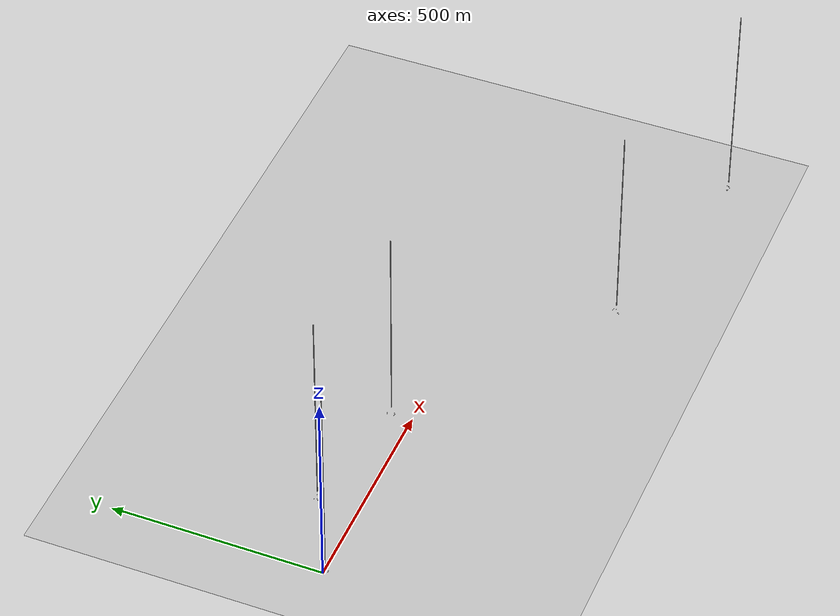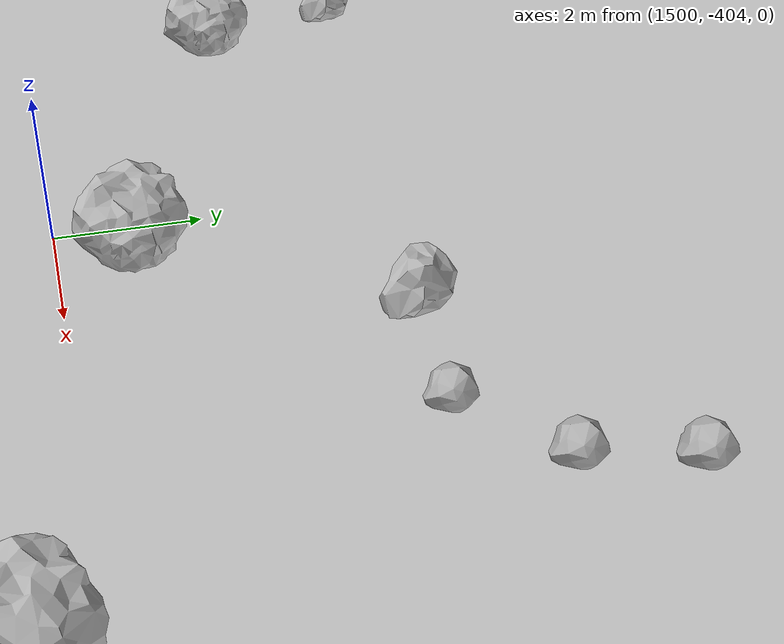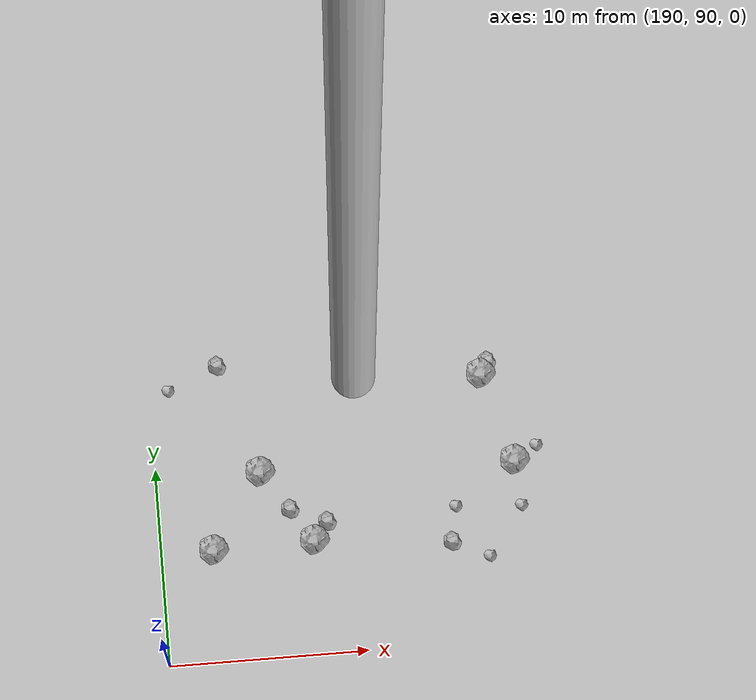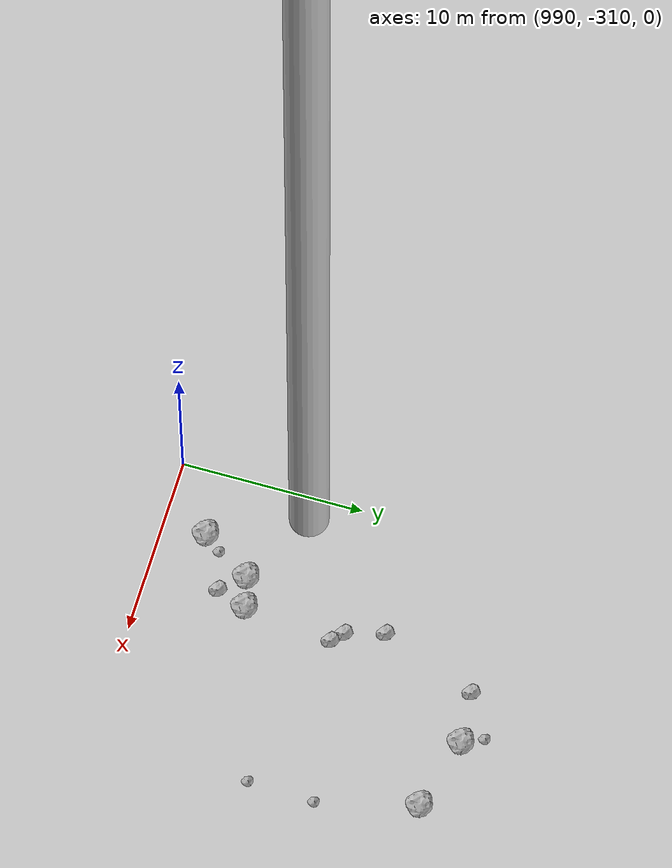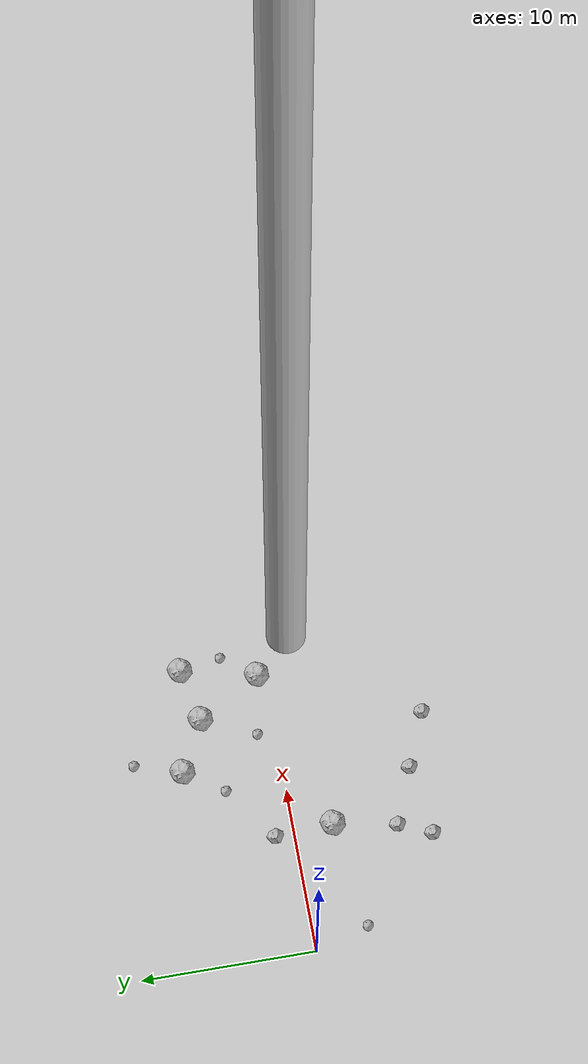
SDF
<?xml version="1.0" ?>
<sdf version="1.6">
  <world name="default">

    <include>
      <uri>model://custom_ground</uri>
    </include>

    <include>
      <uri>model://sun</uri>
    </include>

    <spherical_coordinates>
      <surface_model>EARTH_WGS84</surface_model>
      <latitude_deg>38.161479</latitude_deg>
      <longitude_deg>-122.454630</longitude_deg>
      <elevation>488.0</elevation>
      <heading_deg>90</heading_deg>
    </spherical_coordinates>

    <model name="rock1_0_0">
      <include>
        <uri>model://rock1</uri>
        <pose>7.379232611972613 -2.2428497083635346 0.5 0 0 0</pose>
      </include>
    </model>
    <model name="rock1_0_1">
      <include>
        <uri>model://rock1</uri>
        <pose>17.54307201639631 0.4976345284753698 0.5 0 0 0</pose>
      </include>
    </model>
    <model name="rock1_0_2">
      <include>
        <uri>model://rock1</uri>
        <pose>18.58029220139673 4.981866326986168 0.5 0 0 0</pose>
      </include>
    </model>
    <model name="rock1_0_3">
      <include>
        <uri>model://rock1</uri>
        <pose>12.057764839665095 5.822524278129027 0.5 0 0 0</pose>
      </include>
    </model>
    <model name="rock1_0_4">
      <include>
        <uri>model://rock1</uri>
        <pose>15.242414641748683 4.259333315711826 0.5 0 0 0</pose>
      </include>
    </model>
    <model name="rock2_0_0">
      <include>
        <uri>model://rock2</uri>
        <pose>10.136964048074367 -7.3278439903098125 0.3 0 0 0</pose>
      </include>
    </model>
    <model name="rock2_0_1">
      <include>
        <uri>model://rock2</uri>
        <pose>7.19236365198382 1.147433065514921 0.3 0 0 0</pose>
      </include>
    </model>
    <model name="rock2_0_2">
      <include>
        <uri>model://rock2</uri>
        <pose>13.509653513262517 -8.75320403917659 0.3 0 0 0</pose>
      </include>
    </model>
    <model name="rock2_0_3">
      <include>
        <uri>model://rock2</uri>
        <pose>6.7086103153643 -5.939850212668056 0.3 0 0 0</pose>
      </include>
    </model>
    <model name="rock2_0_4">
      <include>
        <uri>model://rock2</uri>
        <pose>5.854697032377311 -7.84523264386368 0.3 0 0 0</pose>
      </include>
    </model>
    <model name="rock3_0_0">
      <include>
        <uri>model://rock3</uri>
        <pose>12.96662860747352 8.55162350194285 0.2 0 0 0</pose>
      </include>
    </model>
    <model name="rock3_0_1">
      <include>
        <uri>model://rock3</uri>
        <pose>10.47706464797959 3.4771695604316015 0.2 0 0 0</pose>
      </include>
    </model>
    <model name="rock3_0_2">
      <include>
        <uri>model://rock3</uri>
        <pose>19.07142275303622 2.45354061951023 0.2 0 0 0</pose>
      </include>
    </model>
    <model name="rock3_0_3">
      <include>
        <uri>model://rock3</uri>
        <pose>0.9592064327473193 -3.126157604170759 0.2 0 0 0</pose>
      </include>
    </model>
    <model name="rock3_0_4">
      <include>
        <uri>model://rock3</uri>
        <pose>13.742263821748066 1.0525744034573812 0.2 0 0 0</pose>
      </include>
    </model>
    <model name="rock1_1_0">
      <include>
        <uri>model://rock1</uri>
        <pose>192.65963486929024 95.65905906354459 0.5 0 0 0</pose>
      </include>
    </model>
    <model name="rock1_1_1">
      <include>
        <uri>model://rock1</uri>
        <pose>208.11856467296144 99.0212471479697 0.5 0 0 0</pose>
      </include>
    </model>
    <model name="rock1_1_2">
      <include>
        <uri>model://rock1</uri>
        <pose>197.7430410345474 95.76372327381111 0.5 0 0 0</pose>
      </include>
    </model>
    <model name="rock1_1_3">
      <include>
        <uri>model://rock1</uri>
        <pose>206.79416944723982 103.56601422638032 0.5 0 0 0</pose>
      </include>
    </model>
    <model name="rock1_1_4">
      <include>
        <uri>model://rock1</uri>
        <pose>195.2888165359359 99.44794397000695 0.5 0 0 0</pose>
      </include>
    </model>
    <model name="rock2_1_0">
      <include>
        <uri>model://rock2</uri>
        <pose>193.50230348733518 105.05259860052638 0.3 0 0 0</pose>
      </include>
    </model>
    <model name="rock2_1_1">
      <include>
        <uri>model://rock2</uri>
        <pose>204.6269976837161 95.14259300785554 0.3 0 0 0</pose>
      </include>
    </model>
    <model name="rock2_1_2">
      <include>
        <uri>model://rock2</uri>
        <pose>198.43987858917023 96.66897066832614 0.3 0 0 0</pose>
      </include>
    </model>
    <model name="rock2_1_3">
      <include>
        <uri>model://rock2</uri>
        <pose>207.15117767796826 104.19315534825562 0.3 0 0 0</pose>
      </include>
    </model>
    <model name="rock2_1_4">
      <include>
        <uri>model://rock2</uri>
        <pose>196.62047473243734 97.44141268115578 0.3 0 0 0</pose>
      </include>
    </model>
    <model name="rock3_1_0">
      <include>
        <uri>model://rock3</uri>
        <pose>208.25271060199188 96.7056942700612 0.2 0 0 0</pose>
      </include>
    </model>
    <model name="rock3_1_1">
      <include>
        <uri>model://rock3</uri>
        <pose>204.94640184004942 96.911944459405 0.2 0 0 0</pose>
      </include>
    </model>
    <model name="rock3_1_2">
      <include>
        <uri>model://rock3</uri>
        <pose>206.4499634082465 94.25553433504264 0.2 0 0 0</pose>
      </include>
    </model>
    <model name="rock3_1_3">
      <include>
        <uri>model://rock3</uri>
        <pose>190.9441901456082 103.96255084450746 0.2 0 0 0</pose>
      </include>
    </model>
    <model name="rock3_1_4">
      <include>
        <uri>model://rock3</uri>
        <pose>209.24829225507767 99.70401348560605 0.2 0 0 0</pose>
      </include>
    </model>
    <model name="rock1_2_0">
      <include>
        <uri>model://rock1</uri>
        <pose>495.4190154754119 41.79932368541672 0.5 0 0 0</pose>
      </include>
    </model>
    <model name="rock1_2_1">
      <include>
        <uri>model://rock1</uri>
        <pose>502.59260118912965 44.41047973442254 0.5 0 0 0</pose>
      </include>
    </model>
    <model name="rock1_2_2">
      <include>
        <uri>model://rock1</uri>
        <pose>499.88463050395717 42.07353846923775 0.5 0 0 0</pose>
      </include>
    </model>
    <model name="rock1_2_3">
      <include>
        <uri>model://rock1</uri>
        <pose>498.5472193479969 59.60828104177747 0.5 0 0 0</pose>
      </include>
    </model>
    <model name="rock1_2_4">
      <include>
        <uri>model://rock1</uri>
        <pose>495.1187538732593 57.86192993864931 0.5 0 0 0</pose>
      </include>
    </model>
    <model name="rock2_2_0">
      <include>
        <uri>model://rock2</uri>
        <pose>495.4696240272632 57.900849028394106 0.3 0 0 0</pose>
      </include>
    </model>
    <model name="rock2_2_1">
      <include>
        <uri>model://rock2</uri>
        <pose>497.9523534637473 41.843080763891884 0.3 0 0 0</pose>
      </include>
    </model>
    <model name="rock2_2_2">
      <include>
        <uri>model://rock2</uri>
        <pose>503.6606618638101 56.5319299252318 0.3 0 0 0</pose>
      </include>
    </model>
    <model name="rock2_2_3">
      <include>
        <uri>model://rock2</uri>
        <pose>494.9614028075601 41.60175217658941 0.3 0 0 0</pose>
      </include>
    </model>
    <model name="rock2_2_4">
      <include>
        <uri>model://rock2</uri>
        <pose>495.99626912166997 58.6295155767114 0.3 0 0 0</pose>
      </include>
    </model>
    <model name="rock3_2_0">
      <include>
        <uri>model://rock3</uri>
        <pose>497.7100377151045 53.844429719710746 0.2 0 0 0</pose>
      </include>
    </model>
    <model name="rock3_2_1">
      <include>
        <uri>model://rock3</uri>
        <pose>492.9810355330943 56.01609591155831 0.2 0 0 0</pose>
      </include>
    </model>
    <model name="rock3_2_2">
      <include>
        <uri>model://rock3</uri>
        <pose>508.9775710603525 47.30244403505675 0.2 0 0 0</pose>
      </include>
    </model>
    <model name="rock3_2_3">
      <include>
        <uri>model://rock3</uri>
        <pose>504.91261052110787 55.704908232718324 0.2 0 0 0</pose>
      </include>
    </model>
    <model name="rock3_2_4">
      <include>
        <uri>model://rock3</uri>
        <pose>500.30713864037574 40.38633201985318 0.2 0 0 0</pose>
      </include>
    </model>
    <model name="rock1_3_0">
      <include>
        <uri>model://rock1</uri>
        <pose>997.2710933776309 -304.43964482061295 0.5 0 0 0</pose>
      </include>
    </model>
    <model name="rock1_3_1">
      <include>
        <uri>model://rock1</uri>
        <pose>993.7921834729701 -307.6173377491095 0.5 0 0 0</pose>
      </include>
    </model>
    <model name="rock1_3_2">
      <include>
        <uri>model://rock1</uri>
        <pose>1001.53735078389 -291.3616800020187 0.5 0 0 0</pose>
      </include>
    </model>
    <model name="rock1_3_3">
      <include>
        <uri>model://rock1</uri>
        <pose>995.5824353993698 -304.8434424023813 0.5 0 0 0</pose>
      </include>
    </model>
    <model name="rock1_3_4">
      <include>
        <uri>model://rock1</uri>
        <pose>1005.5440092759063 -292.47860678253625 0.5 0 0 0</pose>
      </include>
    </model>
    <model name="rock2_3_0">
      <include>
        <uri>model://rock2</uri>
        <pose>998.5714120810819 -291.57764730157214 0.3 0 0 0</pose>
      </include>
    </model>
    <model name="rock2_3_1">
      <include>
        <uri>model://rock2</uri>
        <pose>996.5615772127632 -296.8399013433679 0.3 0 0 0</pose>
      </include>
    </model>
    <model name="rock2_3_2">
      <include>
        <uri>model://rock2</uri>
        <pose>997.767210947868 -299.524870177146 0.3 0 0 0</pose>
      </include>
    </model>
    <model name="rock2_3_3">
      <include>
        <uri>model://rock2</uri>
        <pose>996.5949672522362 -306.06039700985735 0.3 0 0 0</pose>
      </include>
    </model>
    <model name="rock2_3_4">
      <include>
        <uri>model://rock2</uri>
        <pose>997.1615123186784 -298.94642449192713 0.3 0 0 0</pose>
      </include>
    </model>
    <model name="rock3_3_0">
      <include>
        <uri>model://rock3</uri>
        <pose>1006.789358741814 -297.8417223516526 0.2 0 0 0</pose>
      </include>
    </model>
    <model name="rock3_3_1">
      <include>
        <uri>model://rock3</uri>
        <pose>1006.6463923304086 -301.48080661528405 0.2 0 0 0</pose>
      </include>
    </model>
    <model name="rock3_3_2">
      <include>
        <uri>model://rock3</uri>
        <pose>1000.9033926874889 -290.23426551306943 0.2 0 0 0</pose>
      </include>
    </model>
    <model name="rock3_3_3">
      <include>
        <uri>model://rock3</uri>
        <pose>994.4622678152003 -306.6841158254487 0.2 0 0 0</pose>
      </include>
    </model>
    <model name="rock3_3_4">
      <include>
        <uri>model://rock3</uri>
        <pose>1001.3522413103808 -291.1648581468983 0.2 0 0 0</pose>
      </include>
    </model>
    <model name="rock1_4_0">
      <include>
        <uri>model://rock1</uri>
        <pose>1490.6692641608436 -400.2717314236855 0.5 0 0 0</pose>
      </include>
    </model>
    <model name="rock1_4_1">
      <include>
        <uri>model://rock1</uri>
        <pose>1500.7536470633574 -403.01230460587993 0.5 0 0 0</pose>
      </include>
    </model>
    <model name="rock1_4_2">
      <include>
        <uri>model://rock1</uri>
        <pose>1501.7695301802369 -390.31251313060034 0.5 0 0 0</pose>
      </include>
    </model>
    <model name="rock1_4_3">
      <include>
        <uri>model://rock1</uri>
        <pose>1493.7714206870073 -400.8306208264477 0.5 0 0 0</pose>
      </include>
    </model>
    <model name="rock1_4_4">
      <include>
        <uri>model://rock1</uri>
        <pose>1507.3758814454823 -404.7123391282968 0.5 0 0 0</pose>
      </include>
    </model>
    <model name="rock2_4_0">
      <include>
        <uri>model://rock2</uri>
        <pose>1507.316013639872 -395.0805272489439 0.3 0 0 0</pose>
      </include>
    </model>
    <model name="rock2_4_1">
      <include>
        <uri>model://rock2</uri>
        <pose>1497.9504940814459 -407.8295160124945 0.3 0 0 0</pose>
      </include>
    </model>
    <model name="rock2_4_2">
      <include>
        <uri>model://rock2</uri>
        <pose>1502.8331148579741 -399.80143644949055 0.3 0 0 0</pose>
      </include>
    </model>
    <model name="rock2_4_3">
      <include>
        <uri>model://rock2</uri>
        <pose>1496.2642879421664 -405.34484113549127 0.3 0 0 0</pose>
      </include>
    </model>
    <model name="rock2_4_4">
      <include>
        <uri>model://rock2</uri>
        <pose>1492.7478515826228 -398.39164371604085 0.3 0 0 0</pose>
      </include>
    </model>
    <model name="rock3_4_0">
      <include>
        <uri>model://rock3</uri>
        <pose>1500.1218731123147 -390.7046781689383 0.2 0 0 0</pose>
      </include>
    </model>
    <model name="rock3_4_1">
      <include>
        <uri>model://rock3</uri>
        <pose>1505.9632762642461 -399.12438962106074 0.2 0 0 0</pose>
      </include>
    </model>
    <model name="rock3_4_2">
      <include>
        <uri>model://rock3</uri>
        <pose>1505.0546371291077 -405.6016406156937 0.2 0 0 0</pose>
      </include>
    </model>
    <model name="rock3_4_3">
      <include>
        <uri>model://rock3</uri>
        <pose>1506.3211257410453 -397.866798288265 0.2 0 0 0</pose>
      </include>
    </model>
    <model name="rock3_4_4">
      <include>
        <uri>model://rock3</uri>
        <pose>1504.737671634551 -400.06976261415025 0.2 0 0 0</pose>
      </include>
    </model>

    <model name="cylinder_1">
      <static>true</static>
      <link name="link">
        <visual name="visual">
          <geometry>
            <cylinder>
              <radius>1</radius>
              <length>500</length>
            </cylinder>
          </geometry>
        </visual>
      </link>
      <pose>10 0 270 0 0 0</pose>
    </model>

    <model name="cylinder_2">
      <static>true</static>
      <link name="link">
        <visual name="visual">
          <geometry>
            <cylinder>
              <radius>1</radius>
              <length>500</length>
            </cylinder>
          </geometry>
        </visual>
      </link>
      <pose>200 100 270 0 0 0</pose>
    </model>

    <model name="cylinder_3">
      <static>true</static>
      <link name="link">
        <visual name="visual">
          <geometry>
            <cylinder>
              <radius>1</radius>
              <length>500</length>
            </cylinder>
          </geometry>
        </visual>
      </link>
      <pose>500 50 270 0 0 0</pose>
    </model>

    <model name="cylinder_4">
      <static>true</static>
      <link name="link">
        <visual name="visual">
          <geometry>
            <cylinder>
              <radius>1</radius>
              <length>500</length>
            </cylinder>
          </geometry>
        </visual>
      </link>
      <pose>1000 -300 270 0 0 0</pose>
    </model>

    <model name="cylinder_5">
      <static>true</static>
      <link name="link">
        <visual name="visual">
          <geometry>
            <cylinder>
              <radius>1</radius>
              <length>500</length>
            </cylinder>
          </geometry>
        </visual>
      </link>
      <pose>1500 -400 270 0 0 0</pose>
    </model>

  </world>
</sdf>

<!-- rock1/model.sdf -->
<sdf version="1.6">
  <model name="rock1">
    <static>true</static> <!-- Set to true if the model should not move -->
    <pose>0 0 0 0 0 0</pose>

    <!--z offset is 0.5 for full scale-->

    <link name="link">
      <collision name="rock1_collision">
        <geometry>
          <mesh>
            <uri>model://meshes/rock1.dae</uri>
          </mesh>
        </geometry>
      </collision>
      <visual name="rock1_visual">
        <geometry>
          <mesh>
            <uri>model://meshes/rock1.dae</uri>
          </mesh>
        </geometry>
        <material>
          <script>
            <uri>model://materials/scripts/sand_pebbles.material</uri>
            <name>custom_ground/Image</name>
          </script>
        </material>
      </visual>
    </link>
  </model>
</sdf>

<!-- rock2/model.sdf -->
<sdf version="1.6">
  <model name="rock2">
    <static>true</static> <!-- Set to true if the model should not move -->
    <pose>0 0 0 0 0 0</pose>

    <!--z offset is 0.3 for full scale-->

    <link name="link">
      <collision name="rock2_collision">
        <geometry>
          <mesh>
            <uri>model://meshes/rock2.dae</uri>
          </mesh>
        </geometry>
      </collision>
      <visual name="rock2_visual">
        <geometry>
          <mesh>
            <uri>model://meshes/rock2.dae</uri>
          </mesh>
        </geometry>
        <material>
          <script>
            <uri>model://materials/scripts/sand_pebbles.material</uri>
            <name>custom_ground/Image</name>
          </script>
        </material>
      </visual>
    </link>
  </model>
</sdf>

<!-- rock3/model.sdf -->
<sdf version="1.6">
  <model name="rock3">
    <static>true</static> <!-- Set to true if the model should not move -->
    <pose>0 0 0 0 0 0</pose>

    <!--z offset is 0.2 for full scale-->

    <link name="link">
      <collision name="rock3_collision">
        <geometry>
          <mesh>
            <uri>model://meshes/rock3.dae</uri>
          </mesh>
        </geometry>
      </collision>
      <visual name="rock3_visual">
        <geometry>
          <mesh>
            <uri>model://meshes/rock3.dae</uri>
          </mesh>
        </geometry>
        <material>
          <script>
            <uri>model://materials/scripts/sand_pebbles.material</uri>
            <name>custom_ground/Image</name>
          </script>
        </material>
      </visual>
    </link>
  </model>
</sdf>

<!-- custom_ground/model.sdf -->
<sdf version="1.6">
  <model name="custom_ground">
    <static>true</static> <!-- Ground is static and immovable -->
    <link name="ground_link">
      <pose>240 0 0 0 0 0</pose> <!-- Position and orientation relative to the world -->
      <!-- Visual Representation -->
      <visual name="ground_visual">
        <geometry>
          <plane>
            <normal>0 0 1</normal> <!-- Upward facing plane -->
            <size>500 500</size> <!-- Size of the plane -->
          </plane>
        </geometry>
        <material>
          <script>
            <uri>model://materials/scripts/sand_pebbles.material</uri>
            <name>custom_ground/Image</name>
          </script>
        </material>
      </visual>

      <!-- Collision Representation -->
      <collision name="ground_collision">
        <geometry>
          <plane>
            <normal>0 0 1</normal>
            <size>100 100</size>
          </plane>
        </geometry>
      </collision>

    </link>
  </model>
</sdf>
